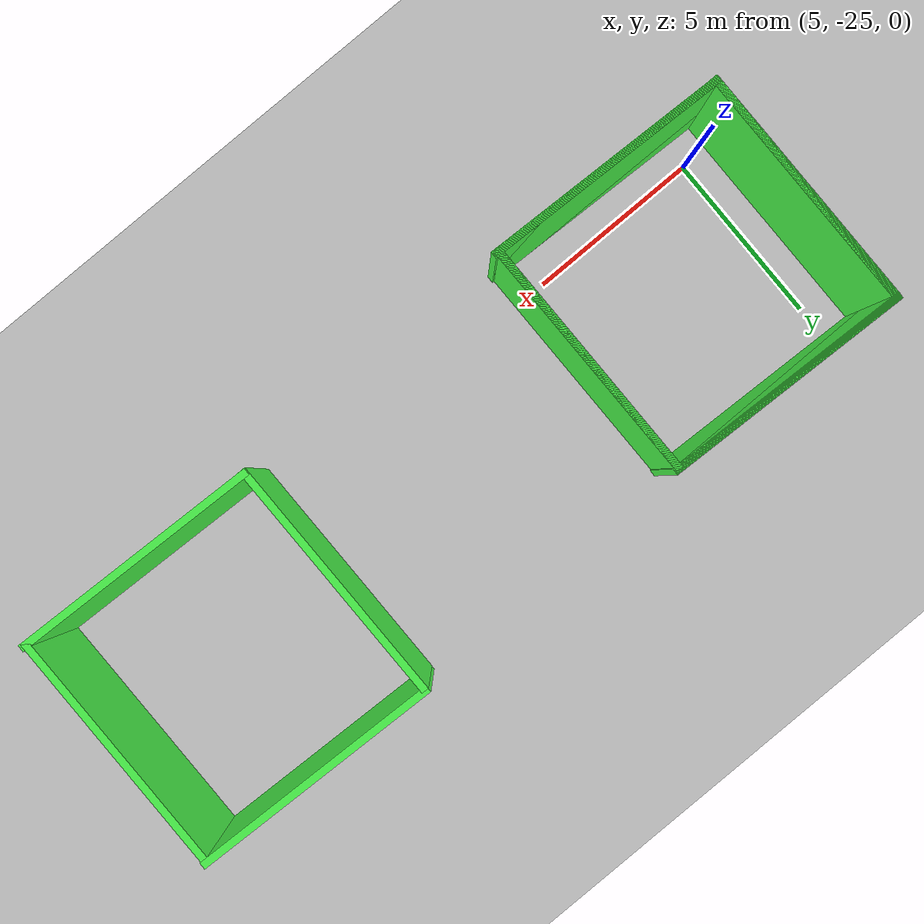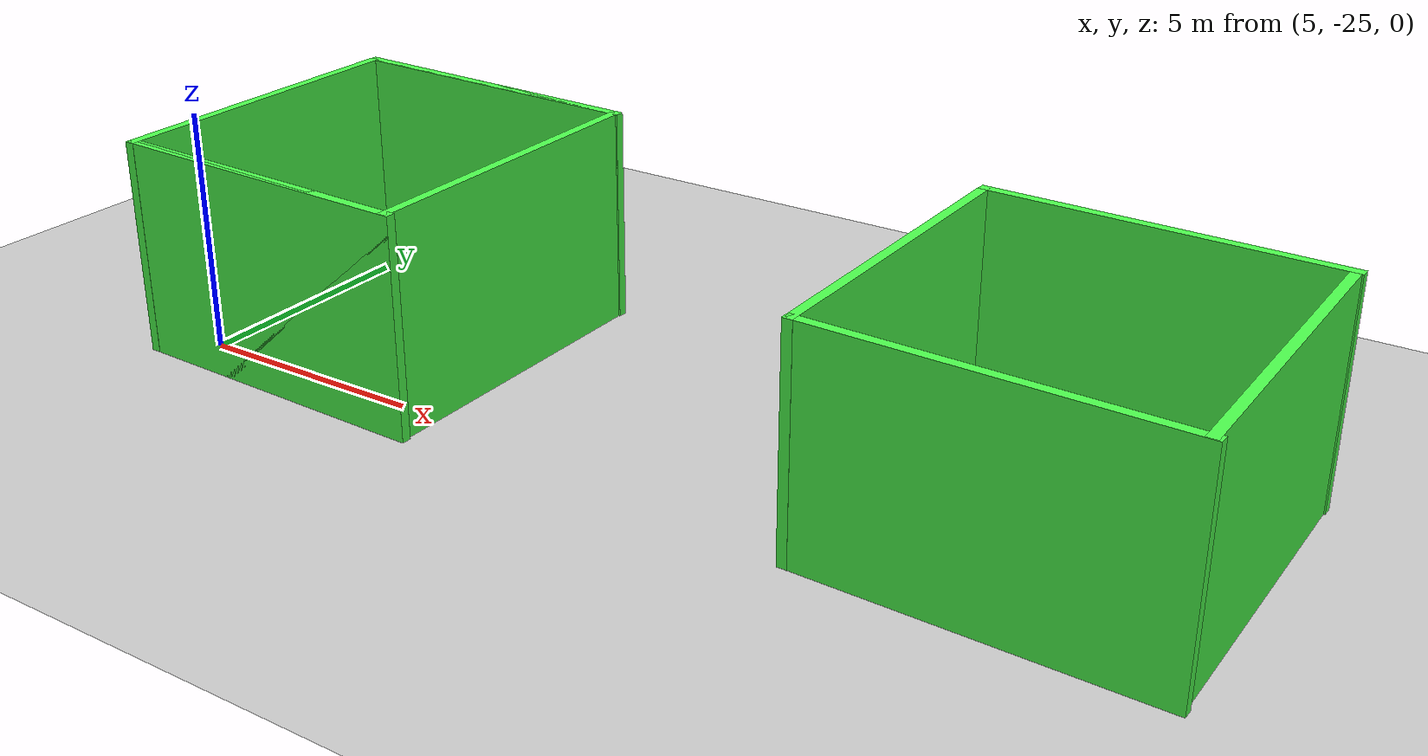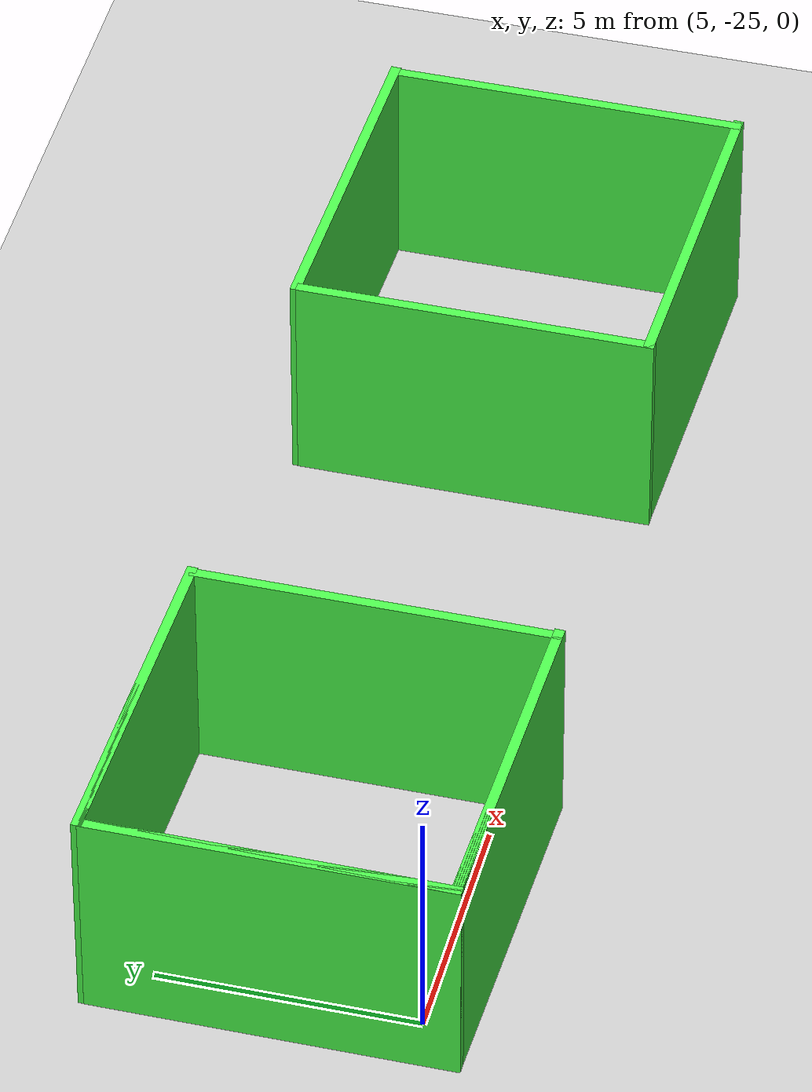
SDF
<sdf version="1.7">
 <world name="default">
  <model name="wall_clone_6">
   <pose>7.50002 -22.5 2.25 0 -0 0</pose>
   <frame name="closed_green_wall::__model__" attached_to="closed_green_wall::link_0">
    <pose relative_to="__model__">0 0 0 0 -0 0</pose>
   </frame>
   <link name="closed_green_wall::link_0">
    <inertial>
     <mass>1</mass>
     <inertia>
      <ixx>0.166667</ixx>
      <ixy>0</ixy>
      <ixz>0</ixz>
      <iyy>0.166667</iyy>
      <iyz>0</iyz>
      <izz>0.166667</izz>
     </inertia>
    </inertial>
    <pose relative_to="closed_green_wall::__model__">3.37098 -0.107634 -0 0 -0 0</pose>
    <visual name="visual">
     <geometry><box><size>0.2 7 4.5</size></box></geometry>
     <material>
      <lighting>1</lighting>
      <script><uri>file://media/materials/scripts/gazebo.material</uri><name>Gazebo/Grey</name></script>
      <shader type="vertex"><normal_map>__default__</normal_map></shader>
      <ambient>0.3 1 0.3 1</ambient>
      <diffuse>0.7 0.7 0.7 1</diffuse>
      <specular>0.01 0.01 0.01 1</specular>
      <emissive>0 0 0 1</emissive>
     </material>
    </visual>
    <collision name="collision">
     <geometry><box><size>0.2 7 4.5</size></box></geometry>
     <surface>
      <friction>
       <ode><mu>1</mu><mu2>1</mu2><fdir1>0 0 0</fdir1><slip1>0</slip1><slip2>0</slip2></ode>
       <torsional>
        <coefficient>1</coefficient>
        <patch_radius>0</patch_radius>
        <surface_radius>0</surface_radius>
        <use_patch_radius>1</use_patch_radius>
        <ode><slip>0</slip></ode>
       </torsional>
      </friction>
      <bounce><restitution_coefficient>0</restitution_coefficient><threshold>1e+06</threshold></bounce>
      <contact>
       <collide_without_contact>0</collide_without_contact>
       <collide_without_contact_bitmask>1</collide_without_contact_bitmask>
       <collide_bitmask>1</collide_bitmask>
       <ode>
        <soft_cfm>0</soft_cfm>
        <soft_erp>0.2</soft_erp>
        <kp>1e+13</kp>
        <kd>1</kd>
        <max_vel>0.01</max_vel>
        <min_depth>0</min_depth>
       </ode>
       <bullet>
        <split_impulse>1</split_impulse>
        <split_impulse_penetration_threshold>-0.01</split_impulse_penetration_threshold>
        <soft_cfm>0</soft_cfm>
        <soft_erp>0.2</soft_erp>
        <kp>1e+13</kp>
        <kd>1</kd>
       </bullet>
      </contact>
     </surface>
    </collision>
   </link>
   <link name="closed_green_wall::link_0_clone">
    <inertial>
     <mass>1</mass>
     <inertia>
      <ixx>0.166667</ixx>
      <ixy>0</ixy>
      <ixz>0</ixz>
      <iyy>0.166667</iyy>
      <iyz>0</iyz>
      <izz>0.166667</izz>
     </inertia>
    </inertial>
    <pose relative_to="closed_green_wall::__model__">0.024232 -3.42805 -0 0 0 -1.59986</pose>
    <visual name="visual">
     <geometry><box><size>0.2 7 4.5</size></box></geometry>
     <material>
      <lighting>1</lighting>
      <script><uri>file://media/materials/scripts/gazebo.material</uri><name>Gazebo/Grey</name></script>
      <shader type="vertex"><normal_map>__default__</normal_map></shader>
      <ambient>0.3 1 0.3 1</ambient>
      <diffuse>0.7 0.7 0.7 1</diffuse>
      <specular>0.01 0.01 0.01 1</specular>
      <emissive>0 0 0 1</emissive>
     </material>
    </visual>
    <collision name="collision">
     <geometry><box><size>0.2 7 4.5</size></box></geometry>
     <surface>
      <friction>
       <ode><mu>1</mu><mu2>1</mu2><fdir1>0 0 0</fdir1><slip1>0</slip1><slip2>0</slip2></ode>
       <torsional>
        <coefficient>1</coefficient>
        <patch_radius>0</patch_radius>
        <surface_radius>0</surface_radius>
        <use_patch_radius>1</use_patch_radius>
        <ode><slip>0</slip></ode>
       </torsional>
      </friction>
      <bounce><restitution_coefficient>0</restitution_coefficient><threshold>1e+06</threshold></bounce>
      <contact>
       <collide_without_contact>0</collide_without_contact>
       <collide_without_contact_bitmask>1</collide_without_contact_bitmask>
       <collide_bitmask>1</collide_bitmask>
       <ode>
        <soft_cfm>0</soft_cfm>
        <soft_erp>0.2</soft_erp>
        <kp>1e+13</kp>
        <kd>1</kd>
        <max_vel>0.01</max_vel>
        <min_depth>0</min_depth>
       </ode>
       <bullet>
        <split_impulse>1</split_impulse>
        <split_impulse_penetration_threshold>-0.01</split_impulse_penetration_threshold>
        <soft_cfm>0</soft_cfm>
        <soft_erp>0.2</soft_erp>
        <kp>1e+13</kp>
        <kd>1</kd>
       </bullet>
      </contact>
     </surface>
    </collision>
   </link>
   <link name="closed_green_wall::link_0_clone_0">
    <inertial>
     <mass>1</mass>
     <inertia>
      <ixx>0.166667</ixx>
      <ixy>0</ixy>
      <ixz>0</ixz>
      <iyy>0.166667</iyy>
      <iyz>0</iyz>
      <izz>0.166667</izz>
     </inertia>
    </inertial>
    <pose relative_to="closed_green_wall::__model__">-3.40001 0.065208 -0 0 -0 0</pose>
    <visual name="visual">
     <geometry><box><size>0.2 7 4.5</size></box></geometry>
     <material>
      <lighting>1</lighting>
      <script><uri>file://media/materials/scripts/gazebo.material</uri><name>Gazebo/Grey</name></script>
      <shader type="vertex"><normal_map>__default__</normal_map></shader>
      <ambient>0.3 1 0.3 1</ambient>
      <diffuse>0.7 0.7 0.7 1</diffuse>
      <specular>0.01 0.01 0.01 1</specular>
      <emissive>0 0 0 1</emissive>
     </material>
    </visual>
    <collision name="collision">
     <geometry><box><size>0.2 7 4.5</size></box></geometry>
     <surface>
      <friction>
       <ode><mu>1</mu><mu2>1</mu2><fdir1>0 0 0</fdir1><slip1>0</slip1><slip2>0</slip2></ode>
       <torsional>
        <coefficient>1</coefficient>
        <patch_radius>0</patch_radius>
        <surface_radius>0</surface_radius>
        <use_patch_radius>1</use_patch_radius>
        <ode><slip>0</slip></ode>
       </torsional>
      </friction>
      <bounce><restitution_coefficient>0</restitution_coefficient><threshold>1e+06</threshold></bounce>
      <contact>
       <collide_without_contact>0</collide_without_contact>
       <collide_without_contact_bitmask>1</collide_without_contact_bitmask>
       <collide_bitmask>1</collide_bitmask>
       <ode>
        <soft_cfm>0</soft_cfm>
        <soft_erp>0.2</soft_erp>
        <kp>1e+13</kp>
        <kd>1</kd>
        <max_vel>0.01</max_vel>
        <min_depth>0</min_depth>
       </ode>
       <bullet>
        <split_impulse>1</split_impulse>
        <split_impulse_penetration_threshold>-0.01</split_impulse_penetration_threshold>
        <soft_cfm>0</soft_cfm>
        <soft_erp>0.2</soft_erp>
        <kp>1e+13</kp>
        <kd>1</kd>
       </bullet>
      </contact>
     </surface>
    </collision>
   </link>
   <link name="closed_green_wall::link_0_clone_clone">
    <inertial>
     <mass>1</mass>
     <inertia>
      <ixx>0.166667</ixx>
      <ixy>0</ixy>
      <ixz>0</ixz>
      <iyy>0.166667</iyy>
      <iyz>0</iyz>
      <izz>0.166667</izz>
     </inertia>
    </inertial>
    <pose relative_to="closed_green_wall::__model__">0.004806 3.47046 -0 0 0 -1.59986</pose>
    <visual name="visual">
     <geometry><box><size>0.2 7 4.5</size></box></geometry>
     <material>
      <lighting>1</lighting>
      <script><uri>file://media/materials/scripts/gazebo.material</uri><name>Gazebo/Grey</name></script>
      <shader type="vertex"><normal_map>__default__</normal_map></shader>
      <ambient>0.3 1 0.3 1</ambient>
      <diffuse>0.7 0.7 0.7 1</diffuse>
      <specular>0.01 0.01 0.01 1</specular>
      <emissive>0 0 0 1</emissive>
     </material>
    </visual>
    <collision name="collision">
     <geometry><box><size>0.2 7 4.5</size></box></geometry>
     <surface>
      <friction>
       <ode><mu>1</mu><mu2>1</mu2><fdir1>0 0 0</fdir1><slip1>0</slip1><slip2>0</slip2></ode>
       <torsional>
        <coefficient>1</coefficient>
        <patch_radius>0</patch_radius>
        <surface_radius>0</surface_radius>
        <use_patch_radius>1</use_patch_radius>
        <ode><slip>0</slip></ode>
       </torsional>
      </friction>
      <bounce><restitution_coefficient>0</restitution_coefficient><threshold>1e+06</threshold></bounce>
      <contact>
       <collide_without_contact>0</collide_without_contact>
       <collide_without_contact_bitmask>1</collide_without_contact_bitmask>
       <collide_bitmask>1</collide_bitmask>
       <ode>
        <soft_cfm>0</soft_cfm>
        <soft_erp>0.2</soft_erp>
        <kp>1e+13</kp>
        <kd>1</kd>
        <max_vel>0.01</max_vel>
        <min_depth>0</min_depth>
       </ode>
       <bullet>
        <split_impulse>1</split_impulse>
        <split_impulse_penetration_threshold>-0.01</split_impulse_penetration_threshold>
        <soft_cfm>0</soft_cfm>
        <soft_erp>0.2</soft_erp>
        <kp>1e+13</kp>
        <kd>1</kd>
       </bullet>
      </contact>
     </surface>
    </collision>
   </link>
   <joint name="closed_green_wall::link_0_JOINT_1" type="fixed">
    <parent>closed_green_wall::link_0</parent>
    <child>closed_green_wall::link_0_clone_clone</child>
    <physics>
     <ode><limit><cfm>0</cfm><erp>0.2</erp></limit><suspension><cfm>0</cfm><erp>0.2</erp></suspension></ode>
    </physics>
   </joint>
   <joint name="closed_green_wall::link_0_clone_0_JOINT_3" type="fixed">
    <parent>closed_green_wall::link_0_clone_0</parent>
    <child>closed_green_wall::link_0_clone</child>
    <physics>
     <ode><limit><cfm>0</cfm><erp>0.2</erp></limit><suspension><cfm>0</cfm><erp>0.2</erp></suspension></ode>
    </physics>
   </joint>
   <joint name="closed_green_wall::link_0_clone_JOINT_0" type="fixed">
    <parent>closed_green_wall::link_0_clone</parent>
    <child>closed_green_wall::link_0</child>
    <physics>
     <ode><limit><cfm>0</cfm><erp>0.2</erp></limit><suspension><cfm>0</cfm><erp>0.2</erp></suspension></ode>
    </physics>
   </joint>
   <joint name="closed_green_wall::link_0_clone_clone_JOINT_2" type="fixed">
    <parent>closed_green_wall::link_0_clone_clone</parent>
    <child>closed_green_wall::link_0_clone_0</child>
    <physics>
     <ode><limit><cfm>0</cfm><erp>0.2</erp></limit><suspension><cfm>0</cfm><erp>0.2</erp></suspension></ode>
    </physics>
   </joint>
   <static>1</static>
  </model>
  <model name="wall_clone_7">
   <pose>22.5 -22.5 2.25 0 -0 0</pose>
   <frame name="closed_green_wall::__model__" attached_to="closed_green_wall::link_0">
    <pose relative_to="__model__">0 0 0 0 -0 0</pose>
   </frame>
   <link name="closed_green_wall::link_0">
    <inertial>
     <mass>1</mass>
     <inertia>
      <ixx>0.166667</ixx>
      <ixy>0</ixy>
      <ixz>0</ixz>
      <iyy>0.166667</iyy>
      <iyz>0</iyz>
      <izz>0.166667</izz>
     </inertia>
    </inertial>
    <pose relative_to="closed_green_wall::__model__">3.37098 -0.107634 -0 0 -0 0</pose>
    <visual name="visual">
     <geometry><box><size>0.2 7 4.5</size></box></geometry>
     <material>
      <lighting>1</lighting>
      <script><uri>file://media/materials/scripts/gazebo.material</uri><name>Gazebo/Grey</name></script>
      <shader type="vertex"><normal_map>__default__</normal_map></shader>
      <ambient>0.3 1 0.3 1</ambient>
      <diffuse>0.7 0.7 0.7 1</diffuse>
      <specular>0.01 0.01 0.01 1</specular>
      <emissive>0 0 0 1</emissive>
     </material>
    </visual>
    <collision name="collision">
     <geometry><box><size>0.2 7 4.5</size></box></geometry>
     <surface>
      <friction>
       <ode><mu>1</mu><mu2>1</mu2><fdir1>0 0 0</fdir1><slip1>0</slip1><slip2>0</slip2></ode>
       <torsional>
        <coefficient>1</coefficient>
        <patch_radius>0</patch_radius>
        <surface_radius>0</surface_radius>
        <use_patch_radius>1</use_patch_radius>
        <ode><slip>0</slip></ode>
       </torsional>
      </friction>
      <bounce><restitution_coefficient>0</restitution_coefficient><threshold>1e+06</threshold></bounce>
      <contact>
       <collide_without_contact>0</collide_without_contact>
       <collide_without_contact_bitmask>1</collide_without_contact_bitmask>
       <collide_bitmask>1</collide_bitmask>
       <ode>
        <soft_cfm>0</soft_cfm>
        <soft_erp>0.2</soft_erp>
        <kp>1e+13</kp>
        <kd>1</kd>
        <max_vel>0.01</max_vel>
        <min_depth>0</min_depth>
       </ode>
       <bullet>
        <split_impulse>1</split_impulse>
        <split_impulse_penetration_threshold>-0.01</split_impulse_penetration_threshold>
        <soft_cfm>0</soft_cfm>
        <soft_erp>0.2</soft_erp>
        <kp>1e+13</kp>
        <kd>1</kd>
       </bullet>
      </contact>
     </surface>
    </collision>
   </link>
   <link name="closed_green_wall::link_0_clone">
    <inertial>
     <mass>1</mass>
     <inertia>
      <ixx>0.166667</ixx>
      <ixy>0</ixy>
      <ixz>0</ixz>
      <iyy>0.166667</iyy>
      <iyz>0</iyz>
      <izz>0.166667</izz>
     </inertia>
    </inertial>
    <pose relative_to="closed_green_wall::__model__">0.024232 -3.42805 -0 0 0 -1.59986</pose>
    <visual name="visual">
     <geometry><box><size>0.2 7 4.5</size></box></geometry>
     <material>
      <lighting>1</lighting>
      <script><uri>file://media/materials/scripts/gazebo.material</uri><name>Gazebo/Grey</name></script>
      <shader type="vertex"><normal_map>__default__</normal_map></shader>
      <ambient>0.3 1 0.3 1</ambient>
      <diffuse>0.7 0.7 0.7 1</diffuse>
      <specular>0.01 0.01 0.01 1</specular>
      <emissive>0 0 0 1</emissive>
     </material>
    </visual>
    <collision name="collision">
     <geometry><box><size>0.2 7 4.5</size></box></geometry>
     <surface>
      <friction>
       <ode><mu>1</mu><mu2>1</mu2><fdir1>0 0 0</fdir1><slip1>0</slip1><slip2>0</slip2></ode>
       <torsional>
        <coefficient>1</coefficient>
        <patch_radius>0</patch_radius>
        <surface_radius>0</surface_radius>
        <use_patch_radius>1</use_patch_radius>
        <ode><slip>0</slip></ode>
       </torsional>
      </friction>
      <bounce><restitution_coefficient>0</restitution_coefficient><threshold>1e+06</threshold></bounce>
      <contact>
       <collide_without_contact>0</collide_without_contact>
       <collide_without_contact_bitmask>1</collide_without_contact_bitmask>
       <collide_bitmask>1</collide_bitmask>
       <ode>
        <soft_cfm>0</soft_cfm>
        <soft_erp>0.2</soft_erp>
        <kp>1e+13</kp>
        <kd>1</kd>
        <max_vel>0.01</max_vel>
        <min_depth>0</min_depth>
       </ode>
       <bullet>
        <split_impulse>1</split_impulse>
        <split_impulse_penetration_threshold>-0.01</split_impulse_penetration_threshold>
        <soft_cfm>0</soft_cfm>
        <soft_erp>0.2</soft_erp>
        <kp>1e+13</kp>
        <kd>1</kd>
       </bullet>
      </contact>
     </surface>
    </collision>
   </link>
   <link name="closed_green_wall::link_0_clone_0">
    <inertial>
     <mass>1</mass>
     <inertia>
      <ixx>0.166667</ixx>
      <ixy>0</ixy>
      <ixz>0</ixz>
      <iyy>0.166667</iyy>
      <iyz>0</iyz>
      <izz>0.166667</izz>
     </inertia>
    </inertial>
    <pose relative_to="closed_green_wall::__model__">-3.40001 0.065208 -0 0 -0 0</pose>
    <visual name="visual">
     <geometry><box><size>0.2 7 4.5</size></box></geometry>
     <material>
      <lighting>1</lighting>
      <script><uri>file://media/materials/scripts/gazebo.material</uri><name>Gazebo/Grey</name></script>
      <shader type="vertex"><normal_map>__default__</normal_map></shader>
      <ambient>0.3 1 0.3 1</ambient>
      <diffuse>0.7 0.7 0.7 1</diffuse>
      <specular>0.01 0.01 0.01 1</specular>
      <emissive>0 0 0 1</emissive>
     </material>
    </visual>
    <collision name="collision">
     <geometry><box><size>0.2 7 4.5</size></box></geometry>
     <surface>
      <friction>
       <ode><mu>1</mu><mu2>1</mu2><fdir1>0 0 0</fdir1><slip1>0</slip1><slip2>0</slip2></ode>
       <torsional>
        <coefficient>1</coefficient>
        <patch_radius>0</patch_radius>
        <surface_radius>0</surface_radius>
        <use_patch_radius>1</use_patch_radius>
        <ode><slip>0</slip></ode>
       </torsional>
      </friction>
      <bounce><restitution_coefficient>0</restitution_coefficient><threshold>1e+06</threshold></bounce>
      <contact>
       <collide_without_contact>0</collide_without_contact>
       <collide_without_contact_bitmask>1</collide_without_contact_bitmask>
       <collide_bitmask>1</collide_bitmask>
       <ode>
        <soft_cfm>0</soft_cfm>
        <soft_erp>0.2</soft_erp>
        <kp>1e+13</kp>
        <kd>1</kd>
        <max_vel>0.01</max_vel>
        <min_depth>0</min_depth>
       </ode>
       <bullet>
        <split_impulse>1</split_impulse>
        <split_impulse_penetration_threshold>-0.01</split_impulse_penetration_threshold>
        <soft_cfm>0</soft_cfm>
        <soft_erp>0.2</soft_erp>
        <kp>1e+13</kp>
        <kd>1</kd>
       </bullet>
      </contact>
     </surface>
    </collision>
   </link>
   <link name="closed_green_wall::link_0_clone_clone">
    <inertial>
     <mass>1</mass>
     <inertia>
      <ixx>0.166667</ixx>
      <ixy>0</ixy>
      <ixz>0</ixz>
      <iyy>0.166667</iyy>
      <iyz>0</iyz>
      <izz>0.166667</izz>
     </inertia>
    </inertial>
    <pose relative_to="closed_green_wall::__model__">0.004806 3.47046 -0 0 0 -1.59986</pose>
    <visual name="visual">
     <geometry><box><size>0.2 7 4.5</size></box></geometry>
     <material>
      <lighting>1</lighting>
      <script><uri>file://media/materials/scripts/gazebo.material</uri><name>Gazebo/Grey</name></script>
      <shader type="vertex"><normal_map>__default__</normal_map></shader>
      <ambient>0.3 1 0.3 1</ambient>
      <diffuse>0.7 0.7 0.7 1</diffuse>
      <specular>0.01 0.01 0.01 1</specular>
      <emissive>0 0 0 1</emissive>
     </material>
    </visual>
    <collision name="collision">
     <geometry><box><size>0.2 7 4.5</size></box></geometry>
     <surface>
      <friction>
       <ode><mu>1</mu><mu2>1</mu2><fdir1>0 0 0</fdir1><slip1>0</slip1><slip2>0</slip2></ode>
       <torsional>
        <coefficient>1</coefficient>
        <patch_radius>0</patch_radius>
        <surface_radius>0</surface_radius>
        <use_patch_radius>1</use_patch_radius>
        <ode><slip>0</slip></ode>
       </torsional>
      </friction>
      <bounce><restitution_coefficient>0</restitution_coefficient><threshold>1e+06</threshold></bounce>
      <contact>
       <collide_without_contact>0</collide_without_contact>
       <collide_without_contact_bitmask>1</collide_without_contact_bitmask>
       <collide_bitmask>1</collide_bitmask>
       <ode>
        <soft_cfm>0</soft_cfm>
        <soft_erp>0.2</soft_erp>
        <kp>1e+13</kp>
        <kd>1</kd>
        <max_vel>0.01</max_vel>
        <min_depth>0</min_depth>
       </ode>
       <bullet>
        <split_impulse>1</split_impulse>
        <split_impulse_penetration_threshold>-0.01</split_impulse_penetration_threshold>
        <soft_cfm>0</soft_cfm>
        <soft_erp>0.2</soft_erp>
        <kp>1e+13</kp>
        <kd>1</kd>
       </bullet>
      </contact>
     </surface>
    </collision>
   </link>
   <joint name="closed_green_wall::link_0_JOINT_1" type="fixed">
    <parent>closed_green_wall::link_0</parent>
    <child>closed_green_wall::link_0_clone_clone</child>
    <physics>
     <ode><limit><cfm>0</cfm><erp>0.2</erp></limit><suspension><cfm>0</cfm><erp>0.2</erp></suspension></ode>
    </physics>
   </joint>
   <joint name="closed_green_wall::link_0_clone_0_JOINT_3" type="fixed">
    <parent>closed_green_wall::link_0_clone_0</parent>
    <child>closed_green_wall::link_0_clone</child>
    <physics>
     <ode><limit><cfm>0</cfm><erp>0.2</erp></limit><suspension><cfm>0</cfm><erp>0.2</erp></suspension></ode>
    </physics>
   </joint>
   <joint name="closed_green_wall::link_0_clone_JOINT_0" type="fixed">
    <parent>closed_green_wall::link_0_clone</parent>
    <child>closed_green_wall::link_0</child>
    <physics>
     <ode><limit><cfm>0</cfm><erp>0.2</erp></limit><suspension><cfm>0</cfm><erp>0.2</erp></suspension></ode>
    </physics>
   </joint>
   <joint name="closed_green_wall::link_0_clone_clone_JOINT_2" type="fixed">
    <parent>closed_green_wall::link_0_clone_clone</parent>
    <child>closed_green_wall::link_0_clone_0</child>
    <physics>
     <ode><limit><cfm>0</cfm><erp>0.2</erp></limit><suspension><cfm>0</cfm><erp>0.2</erp></suspension></ode>
    </physics>
   </joint>
   <static>1</static>
  </model>
  <model name="mars">
   <static>1</static>
   <link name="link">
    <collision name="collision">
     <geometry><plane><normal>0 0 1</normal><size>100 100</size></plane></geometry>
     <surface><friction><ode><mu>100</mu><mu2>50</mu2></ode></friction></surface>
    </collision>
    <visual name="visual">
     <cast_shadows>0</cast_shadows>
     <geometry><plane><normal>0 0 1</normal><size>100 100</size></plane></geometry>
     <material>
      <script>
       <uri>model://mars/materials/scripts</uri>
       <uri>model://mars/materials/textures</uri>
       <name>mars/Image</name>
      </script>
     </material>
    </visual>
   </link>
   <pose>2.3315 -2.15862 0 0 -0 0</pose>
  </model>
  <model name="wall_clone_6_0">
   <pose>7.5 -22.5 2.25 0 -0 0</pose>
   <frame name="closed_green_wall::__model__" attached_to="closed_green_wall::link_0">
    <pose relative_to="__model__">0 0 0 0 -0 0</pose>
   </frame>
   <link name="closed_green_wall::link_0">
    <inertial>
     <mass>1</mass>
     <inertia>
      <ixx>0.166667</ixx>
      <ixy>0</ixy>
      <ixz>0</ixz>
      <iyy>0.166667</iyy>
      <iyz>0</iyz>
      <izz>0.166667</izz>
     </inertia>
    </inertial>
    <pose relative_to="closed_green_wall::__model__">3.37098 -0.107634 -0 0 -0 0</pose>
    <visual name="visual">
     <geometry><box><size>0.2 7 4.5</size></box></geometry>
     <material>
      <lighting>1</lighting>
      <script><uri>file://media/materials/scripts/gazebo.material</uri><name>Gazebo/Grey</name></script>
      <shader type="vertex"><normal_map>__default__</normal_map></shader>
      <ambient>0.3 1 0.3 1</ambient>
      <diffuse>0.7 0.7 0.7 1</diffuse>
      <specular>0.01 0.01 0.01 1</specular>
      <emissive>0 0 0 1</emissive>
     </material>
    </visual>
    <collision name="collision">
     <geometry><box><size>0.2 7 4.5</size></box></geometry>
     <surface>
      <friction>
       <ode><mu>1</mu><mu2>1</mu2><fdir1>0 0 0</fdir1><slip1>0</slip1><slip2>0</slip2></ode>
       <torsional>
        <coefficient>1</coefficient>
        <patch_radius>0</patch_radius>
        <surface_radius>0</surface_radius>
        <use_patch_radius>1</use_patch_radius>
        <ode><slip>0</slip></ode>
       </torsional>
      </friction>
      <bounce><restitution_coefficient>0</restitution_coefficient><threshold>1e+06</threshold></bounce>
      <contact>
       <collide_without_contact>0</collide_without_contact>
       <collide_without_contact_bitmask>1</collide_without_contact_bitmask>
       <collide_bitmask>1</collide_bitmask>
       <ode>
        <soft_cfm>0</soft_cfm>
        <soft_erp>0.2</soft_erp>
        <kp>1e+13</kp>
        <kd>1</kd>
        <max_vel>0.01</max_vel>
        <min_depth>0</min_depth>
       </ode>
       <bullet>
        <split_impulse>1</split_impulse>
        <split_impulse_penetration_threshold>-0.01</split_impulse_penetration_threshold>
        <soft_cfm>0</soft_cfm>
        <soft_erp>0.2</soft_erp>
        <kp>1e+13</kp>
        <kd>1</kd>
       </bullet>
      </contact>
     </surface>
    </collision>
   </link>
   <link name="closed_green_wall::link_0_clone">
    <inertial>
     <mass>1</mass>
     <inertia>
      <ixx>0.166667</ixx>
      <ixy>0</ixy>
      <ixz>0</ixz>
      <iyy>0.166667</iyy>
      <iyz>0</iyz>
      <izz>0.166667</izz>
     </inertia>
    </inertial>
    <pose relative_to="closed_green_wall::__model__">0.024232 -3.42805 -0 0 0 -1.59986</pose>
    <visual name="visual">
     <geometry><box><size>0.2 7 4.5</size></box></geometry>
     <material>
      <lighting>1</lighting>
      <script><uri>file://media/materials/scripts/gazebo.material</uri><name>Gazebo/Grey</name></script>
      <shader type="vertex"><normal_map>__default__</normal_map></shader>
      <ambient>0.3 1 0.3 1</ambient>
      <diffuse>0.7 0.7 0.7 1</diffuse>
      <specular>0.01 0.01 0.01 1</specular>
      <emissive>0 0 0 1</emissive>
     </material>
    </visual>
    <collision name="collision">
     <geometry><box><size>0.2 7 4.5</size></box></geometry>
     <surface>
      <friction>
       <ode><mu>1</mu><mu2>1</mu2><fdir1>0 0 0</fdir1><slip1>0</slip1><slip2>0</slip2></ode>
       <torsional>
        <coefficient>1</coefficient>
        <patch_radius>0</patch_radius>
        <surface_radius>0</surface_radius>
        <use_patch_radius>1</use_patch_radius>
        <ode><slip>0</slip></ode>
       </torsional>
      </friction>
      <bounce><restitution_coefficient>0</restitution_coefficient><threshold>1e+06</threshold></bounce>
      <contact>
       <collide_without_contact>0</collide_without_contact>
       <collide_without_contact_bitmask>1</collide_without_contact_bitmask>
       <collide_bitmask>1</collide_bitmask>
       <ode>
        <soft_cfm>0</soft_cfm>
        <soft_erp>0.2</soft_erp>
        <kp>1e+13</kp>
        <kd>1</kd>
        <max_vel>0.01</max_vel>
        <min_depth>0</min_depth>
       </ode>
       <bullet>
        <split_impulse>1</split_impulse>
        <split_impulse_penetration_threshold>-0.01</split_impulse_penetration_threshold>
        <soft_cfm>0</soft_cfm>
        <soft_erp>0.2</soft_erp>
        <kp>1e+13</kp>
        <kd>1</kd>
       </bullet>
      </contact>
     </surface>
    </collision>
   </link>
   <link name="closed_green_wall::link_0_clone_0">
    <inertial>
     <mass>1</mass>
     <inertia>
      <ixx>0.166667</ixx>
      <ixy>0</ixy>
      <ixz>0</ixz>
      <iyy>0.166667</iyy>
      <iyz>0</iyz>
      <izz>0.166667</izz>
     </inertia>
    </inertial>
    <pose relative_to="closed_green_wall::__model__">-3.40001 0.065208 -0 0 -0 0</pose>
    <visual name="visual">
     <geometry><box><size>0.2 7 4.5</size></box></geometry>
     <material>
      <lighting>1</lighting>
      <script><uri>file://media/materials/scripts/gazebo.material</uri><name>Gazebo/Grey</name></script>
      <shader type="vertex"><normal_map>__default__</normal_map></shader>
      <ambient>0.3 1 0.3 1</ambient>
      <diffuse>0.7 0.7 0.7 1</diffuse>
      <specular>0.01 0.01 0.01 1</specular>
      <emissive>0 0 0 1</emissive>
     </material>
    </visual>
    <collision name="collision">
     <geometry><box><size>0.2 7 4.5</size></box></geometry>
     <surface>
      <friction>
       <ode><mu>1</mu><mu2>1</mu2><fdir1>0 0 0</fdir1><slip1>0</slip1><slip2>0</slip2></ode>
       <torsional>
        <coefficient>1</coefficient>
        <patch_radius>0</patch_radius>
        <surface_radius>0</surface_radius>
        <use_patch_radius>1</use_patch_radius>
        <ode><slip>0</slip></ode>
       </torsional>
      </friction>
      <bounce><restitution_coefficient>0</restitution_coefficient><threshold>1e+06</threshold></bounce>
      <contact>
       <collide_without_contact>0</collide_without_contact>
       <collide_without_contact_bitmask>1</collide_without_contact_bitmask>
       <collide_bitmask>1</collide_bitmask>
       <ode>
        <soft_cfm>0</soft_cfm>
        <soft_erp>0.2</soft_erp>
        <kp>1e+13</kp>
        <kd>1</kd>
        <max_vel>0.01</max_vel>
        <min_depth>0</min_depth>
       </ode>
       <bullet>
        <split_impulse>1</split_impulse>
        <split_impulse_penetration_threshold>-0.01</split_impulse_penetration_threshold>
        <soft_cfm>0</soft_cfm>
        <soft_erp>0.2</soft_erp>
        <kp>1e+13</kp>
        <kd>1</kd>
       </bullet>
      </contact>
     </surface>
    </collision>
   </link>
   <link name="closed_green_wall::link_0_clone_clone">
    <inertial>
     <mass>1</mass>
     <inertia>
      <ixx>0.166667</ixx>
      <ixy>0</ixy>
      <ixz>0</ixz>
      <iyy>0.166667</iyy>
      <iyz>0</iyz>
      <izz>0.166667</izz>
     </inertia>
    </inertial>
    <pose relative_to="closed_green_wall::__model__">0.004806 3.47046 -0 0 0 -1.59986</pose>
    <visual name="visual">
     <geometry><box><size>0.2 7 4.5</size></box></geometry>
     <material>
      <lighting>1</lighting>
      <script><uri>file://media/materials/scripts/gazebo.material</uri><name>Gazebo/Grey</name></script>
      <shader type="vertex"><normal_map>__default__</normal_map></shader>
      <ambient>0.3 1 0.3 1</ambient>
      <diffuse>0.7 0.7 0.7 1</diffuse>
      <specular>0.01 0.01 0.01 1</specular>
      <emissive>0 0 0 1</emissive>
     </material>
    </visual>
    <collision name="collision">
     <geometry><box><size>0.2 7 4.5</size></box></geometry>
     <surface>
      <friction>
       <ode><mu>1</mu><mu2>1</mu2><fdir1>0 0 0</fdir1><slip1>0</slip1><slip2>0</slip2></ode>
       <torsional>
        <coefficient>1</coefficient>
        <patch_radius>0</patch_radius>
        <surface_radius>0</surface_radius>
        <use_patch_radius>1</use_patch_radius>
        <ode><slip>0</slip></ode>
       </torsional>
      </friction>
      <bounce><restitution_coefficient>0</restitution_coefficient><threshold>1e+06</threshold></bounce>
      <contact>
       <collide_without_contact>0</collide_without_contact>
       <collide_without_contact_bitmask>1</collide_without_contact_bitmask>
       <collide_bitmask>1</collide_bitmask>
       <ode>
        <soft_cfm>0</soft_cfm>
        <soft_erp>0.2</soft_erp>
        <kp>1e+13</kp>
        <kd>1</kd>
        <max_vel>0.01</max_vel>
        <min_depth>0</min_depth>
       </ode>
       <bullet>
        <split_impulse>1</split_impulse>
        <split_impulse_penetration_threshold>-0.01</split_impulse_penetration_threshold>
        <soft_cfm>0</soft_cfm>
        <soft_erp>0.2</soft_erp>
        <kp>1e+13</kp>
        <kd>1</kd>
       </bullet>
      </contact>
     </surface>
    </collision>
   </link>
   <joint name="closed_green_wall::link_0_JOINT_1" type="fixed">
    <parent>closed_green_wall::link_0</parent>
    <child>closed_green_wall::link_0_clone_clone</child>
    <physics>
     <ode><limit><cfm>0</cfm><erp>0.2</erp></limit><suspension><cfm>0</cfm><erp>0.2</erp></suspension></ode>
    </physics>
   </joint>
   <joint name="closed_green_wall::link_0_clone_0_JOINT_3" type="fixed">
    <parent>closed_green_wall::link_0_clone_0</parent>
    <child>closed_green_wall::link_0_clone</child>
    <physics>
     <ode><limit><cfm>0</cfm><erp>0.2</erp></limit><suspension><cfm>0</cfm><erp>0.2</erp></suspension></ode>
    </physics>
   </joint>
   <joint name="closed_green_wall::link_0_clone_JOINT_0" type="fixed">
    <parent>closed_green_wall::link_0_clone</parent>
    <child>closed_green_wall::link_0</child>
    <physics>
     <ode><limit><cfm>0</cfm><erp>0.2</erp></limit><suspension><cfm>0</cfm><erp>0.2</erp></suspension></ode>
    </physics>
   </joint>
   <joint name="closed_green_wall::link_0_clone_clone_JOINT_2" type="fixed">
    <parent>closed_green_wall::link_0_clone_clone</parent>
    <child>closed_green_wall::link_0_clone_0</child>
    <physics>
     <ode><limit><cfm>0</cfm><erp>0.2</erp></limit><suspension><cfm>0</cfm><erp>0.2</erp></suspension></ode>
    </physics>
   </joint>
   <static>1</static>
  </model>
  <model name="wall_clone_7_0">
   <pose>22.5 -22.5 2.25 0 -0 0</pose>
   <frame name="closed_green_wall::__model__" attached_to="closed_green_wall::link_0">
    <pose relative_to="__model__">0 0 0 0 -0 0</pose>
   </frame>
   <link name="closed_green_wall::link_0">
    <inertial>
     <mass>1</mass>
     <inertia>
      <ixx>0.166667</ixx>
      <ixy>0</ixy>
      <ixz>0</ixz>
      <iyy>0.166667</iyy>
      <iyz>0</iyz>
      <izz>0.166667</izz>
     </inertia>
    </inertial>
    <pose relative_to="closed_green_wall::__model__">3.37098 -0.107634 -0 0 -0 0</pose>
    <visual name="visual">
     <geometry><box><size>0.2 7 4.5</size></box></geometry>
     <material>
      <lighting>1</lighting>
      <script><uri>file://media/materials/scripts/gazebo.material</uri><name>Gazebo/Grey</name></script>
      <shader type="vertex"><normal_map>__default__</normal_map></shader>
      <ambient>0.3 1 0.3 1</ambient>
      <diffuse>0.7 0.7 0.7 1</diffuse>
      <specular>0.01 0.01 0.01 1</specular>
      <emissive>0 0 0 1</emissive>
     </material>
    </visual>
    <collision name="collision">
     <geometry><box><size>0.2 7 4.5</size></box></geometry>
     <surface>
      <friction>
       <ode><mu>1</mu><mu2>1</mu2><fdir1>0 0 0</fdir1><slip1>0</slip1><slip2>0</slip2></ode>
       <torsional>
        <coefficient>1</coefficient>
        <patch_radius>0</patch_radius>
        <surface_radius>0</surface_radius>
        <use_patch_radius>1</use_patch_radius>
        <ode><slip>0</slip></ode>
       </torsional>
      </friction>
      <bounce><restitution_coefficient>0</restitution_coefficient><threshold>1e+06</threshold></bounce>
      <contact>
       <collide_without_contact>0</collide_without_contact>
       <collide_without_contact_bitmask>1</collide_without_contact_bitmask>
       <collide_bitmask>1</collide_bitmask>
       <ode>
        <soft_cfm>0</soft_cfm>
        <soft_erp>0.2</soft_erp>
        <kp>1e+13</kp>
        <kd>1</kd>
        <max_vel>0.01</max_vel>
        <min_depth>0</min_depth>
       </ode>
       <bullet>
        <split_impulse>1</split_impulse>
        <split_impulse_penetration_threshold>-0.01</split_impulse_penetration_threshold>
        <soft_cfm>0</soft_cfm>
        <soft_erp>0.2</soft_erp>
        <kp>1e+13</kp>
        <kd>1</kd>
       </bullet>
      </contact>
     </surface>
    </collision>
   </link>
   <link name="closed_green_wall::link_0_clone">
    <inertial>
     <mass>1</mass>
     <inertia>
      <ixx>0.166667</ixx>
      <ixy>0</ixy>
      <ixz>0</ixz>
      <iyy>0.166667</iyy>
      <iyz>0</iyz>
      <izz>0.166667</izz>
     </inertia>
    </inertial>
    <pose relative_to="closed_green_wall::__model__">0.024232 -3.42805 -0 0 0 -1.59986</pose>
    <visual name="visual">
     <geometry><box><size>0.2 7 4.5</size></box></geometry>
     <material>
      <lighting>1</lighting>
      <script><uri>file://media/materials/scripts/gazebo.material</uri><name>Gazebo/Grey</name></script>
      <shader type="vertex"><normal_map>__default__</normal_map></shader>
      <ambient>0.3 1 0.3 1</ambient>
      <diffuse>0.7 0.7 0.7 1</diffuse>
      <specular>0.01 0.01 0.01 1</specular>
      <emissive>0 0 0 1</emissive>
     </material>
    </visual>
    <collision name="collision">
     <geometry><box><size>0.2 7 4.5</size></box></geometry>
     <surface>
      <friction>
       <ode><mu>1</mu><mu2>1</mu2><fdir1>0 0 0</fdir1><slip1>0</slip1><slip2>0</slip2></ode>
       <torsional>
        <coefficient>1</coefficient>
        <patch_radius>0</patch_radius>
        <surface_radius>0</surface_radius>
        <use_patch_radius>1</use_patch_radius>
        <ode><slip>0</slip></ode>
       </torsional>
      </friction>
      <bounce><restitution_coefficient>0</restitution_coefficient><threshold>1e+06</threshold></bounce>
      <contact>
       <collide_without_contact>0</collide_without_contact>
       <collide_without_contact_bitmask>1</collide_without_contact_bitmask>
       <collide_bitmask>1</collide_bitmask>
       <ode>
        <soft_cfm>0</soft_cfm>
        <soft_erp>0.2</soft_erp>
        <kp>1e+13</kp>
        <kd>1</kd>
        <max_vel>0.01</max_vel>
        <min_depth>0</min_depth>
       </ode>
       <bullet>
        <split_impulse>1</split_impulse>
        <split_impulse_penetration_threshold>-0.01</split_impulse_penetration_threshold>
        <soft_cfm>0</soft_cfm>
        <soft_erp>0.2</soft_erp>
        <kp>1e+13</kp>
        <kd>1</kd>
       </bullet>
      </contact>
     </surface>
    </collision>
   </link>
   <link name="closed_green_wall::link_0_clone_0">
    <inertial>
     <mass>1</mass>
     <inertia>
      <ixx>0.166667</ixx>
      <ixy>0</ixy>
      <ixz>0</ixz>
      <iyy>0.166667</iyy>
      <iyz>0</iyz>
      <izz>0.166667</izz>
     </inertia>
    </inertial>
    <pose relative_to="closed_green_wall::__model__">-3.40001 0.065208 -0 0 -0 0</pose>
    <visual name="visual">
     <geometry><box><size>0.2 7 4.5</size></box></geometry>
     <material>
      <lighting>1</lighting>
      <script><uri>file://media/materials/scripts/gazebo.material</uri><name>Gazebo/Grey</name></script>
      <shader type="vertex"><normal_map>__default__</normal_map></shader>
      <ambient>0.3 1 0.3 1</ambient>
      <diffuse>0.7 0.7 0.7 1</diffuse>
      <specular>0.01 0.01 0.01 1</specular>
      <emissive>0 0 0 1</emissive>
     </material>
    </visual>
    <collision name="collision">
     <geometry><box><size>0.2 7 4.5</size></box></geometry>
     <surface>
      <friction>
       <ode><mu>1</mu><mu2>1</mu2><fdir1>0 0 0</fdir1><slip1>0</slip1><slip2>0</slip2></ode>
       <torsional>
        <coefficient>1</coefficient>
        <patch_radius>0</patch_radius>
        <surface_radius>0</surface_radius>
        <use_patch_radius>1</use_patch_radius>
        <ode><slip>0</slip></ode>
       </torsional>
      </friction>
      <bounce><restitution_coefficient>0</restitution_coefficient><threshold>1e+06</threshold></bounce>
      <contact>
       <collide_without_contact>0</collide_without_contact>
       <collide_without_contact_bitmask>1</collide_without_contact_bitmask>
       <collide_bitmask>1</collide_bitmask>
       <ode>
        <soft_cfm>0</soft_cfm>
        <soft_erp>0.2</soft_erp>
        <kp>1e+13</kp>
        <kd>1</kd>
        <max_vel>0.01</max_vel>
        <min_depth>0</min_depth>
       </ode>
       <bullet>
        <split_impulse>1</split_impulse>
        <split_impulse_penetration_threshold>-0.01</split_impulse_penetration_threshold>
        <soft_cfm>0</soft_cfm>
        <soft_erp>0.2</soft_erp>
        <kp>1e+13</kp>
        <kd>1</kd>
       </bullet>
      </contact>
     </surface>
    </collision>
   </link>
   <link name="closed_green_wall::link_0_clone_clone">
    <inertial>
     <mass>1</mass>
     <inertia>
      <ixx>0.166667</ixx>
      <ixy>0</ixy>
      <ixz>0</ixz>
      <iyy>0.166667</iyy>
      <iyz>0</iyz>
      <izz>0.166667</izz>
     </inertia>
    </inertial>
    <pose relative_to="closed_green_wall::__model__">0.004806 3.47046 -0 0 0 -1.59986</pose>
    <visual name="visual">
     <geometry><box><size>0.2 7 4.5</size></box></geometry>
     <material>
      <lighting>1</lighting>
      <script><uri>file://media/materials/scripts/gazebo.material</uri><name>Gazebo/Grey</name></script>
      <shader type="vertex"><normal_map>__default__</normal_map></shader>
      <ambient>0.3 1 0.3 1</ambient>
      <diffuse>0.7 0.7 0.7 1</diffuse>
      <specular>0.01 0.01 0.01 1</specular>
      <emissive>0 0 0 1</emissive>
     </material>
    </visual>
    <collision name="collision">
     <geometry><box><size>0.2 7 4.5</size></box></geometry>
     <surface>
      <friction>
       <ode><mu>1</mu><mu2>1</mu2><fdir1>0 0 0</fdir1><slip1>0</slip1><slip2>0</slip2></ode>
       <torsional>
        <coefficient>1</coefficient>
        <patch_radius>0</patch_radius>
        <surface_radius>0</surface_radius>
        <use_patch_radius>1</use_patch_radius>
        <ode><slip>0</slip></ode>
       </torsional>
      </friction>
      <bounce><restitution_coefficient>0</restitution_coefficient><threshold>1e+06</threshold></bounce>
      <contact>
       <collide_without_contact>0</collide_without_contact>
       <collide_without_contact_bitmask>1</collide_without_contact_bitmask>
       <collide_bitmask>1</collide_bitmask>
       <ode>
        <soft_cfm>0</soft_cfm>
        <soft_erp>0.2</soft_erp>
        <kp>1e+13</kp>
        <kd>1</kd>
        <max_vel>0.01</max_vel>
        <min_depth>0</min_depth>
       </ode>
       <bullet>
        <split_impulse>1</split_impulse>
        <split_impulse_penetration_threshold>-0.01</split_impulse_penetration_threshold>
        <soft_cfm>0</soft_cfm>
        <soft_erp>0.2</soft_erp>
        <kp>1e+13</kp>
        <kd>1</kd>
       </bullet>
      </contact>
     </surface>
    </collision>
   </link>
   <joint name="closed_green_wall::link_0_JOINT_1" type="fixed">
    <parent>closed_green_wall::link_0</parent>
    <child>closed_green_wall::link_0_clone_clone</child>
    <physics>
     <ode><limit><cfm>0</cfm><erp>0.2</erp></limit><suspension><cfm>0</cfm><erp>0.2</erp></suspension></ode>
    </physics>
   </joint>
   <joint name="closed_green_wall::link_0_clone_0_JOINT_3" type="fixed">
    <parent>closed_green_wall::link_0_clone_0</parent>
    <child>closed_green_wall::link_0_clone</child>
    <physics>
     <ode><limit><cfm>0</cfm><erp>0.2</erp></limit><suspension><cfm>0</cfm><erp>0.2</erp></suspension></ode>
    </physics>
   </joint>
   <joint name="closed_green_wall::link_0_clone_JOINT_0" type="fixed">
    <parent>closed_green_wall::link_0_clone</parent>
    <child>closed_green_wall::link_0</child>
    <physics>
     <ode><limit><cfm>0</cfm><erp>0.2</erp></limit><suspension><cfm>0</cfm><erp>0.2</erp></suspension></ode>
    </physics>
   </joint>
   <joint name="closed_green_wall::link_0_clone_clone_JOINT_2" type="fixed">
    <parent>closed_green_wall::link_0_clone_clone</parent>
    <child>closed_green_wall::link_0_clone_0</child>
    <physics>
     <ode><limit><cfm>0</cfm><erp>0.2</erp></limit><suspension><cfm>0</cfm><erp>0.2</erp></suspension></ode>
    </physics>
   </joint>
   <static>1</static>
  </model>
 </world>
</sdf>
